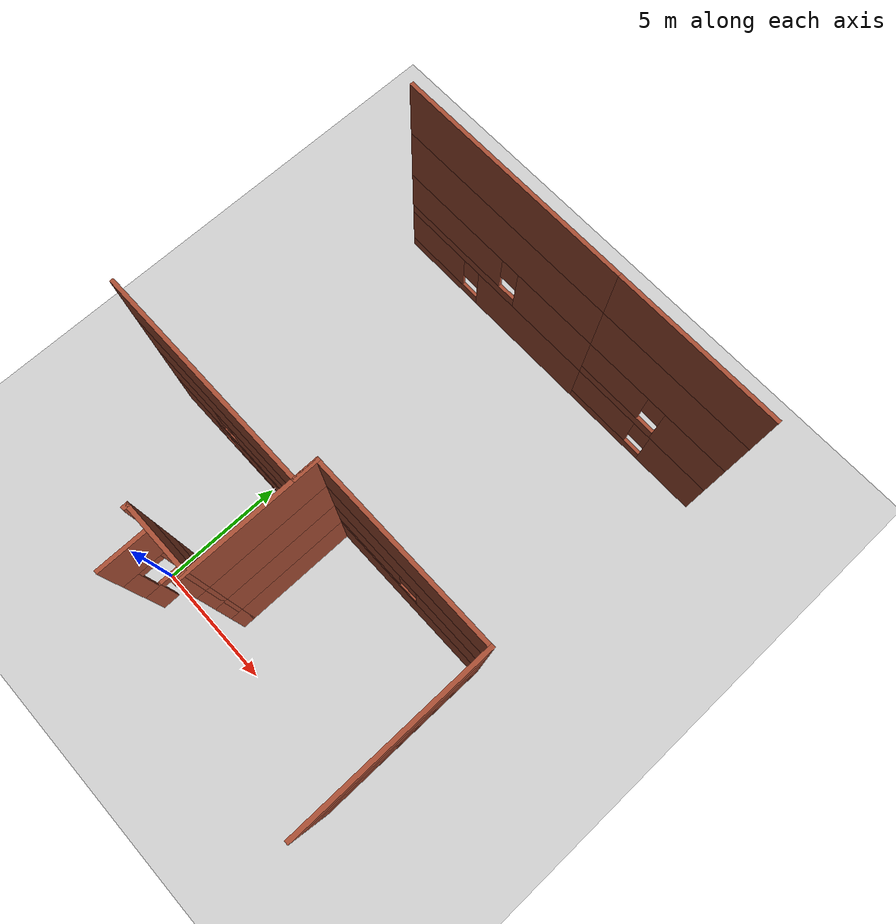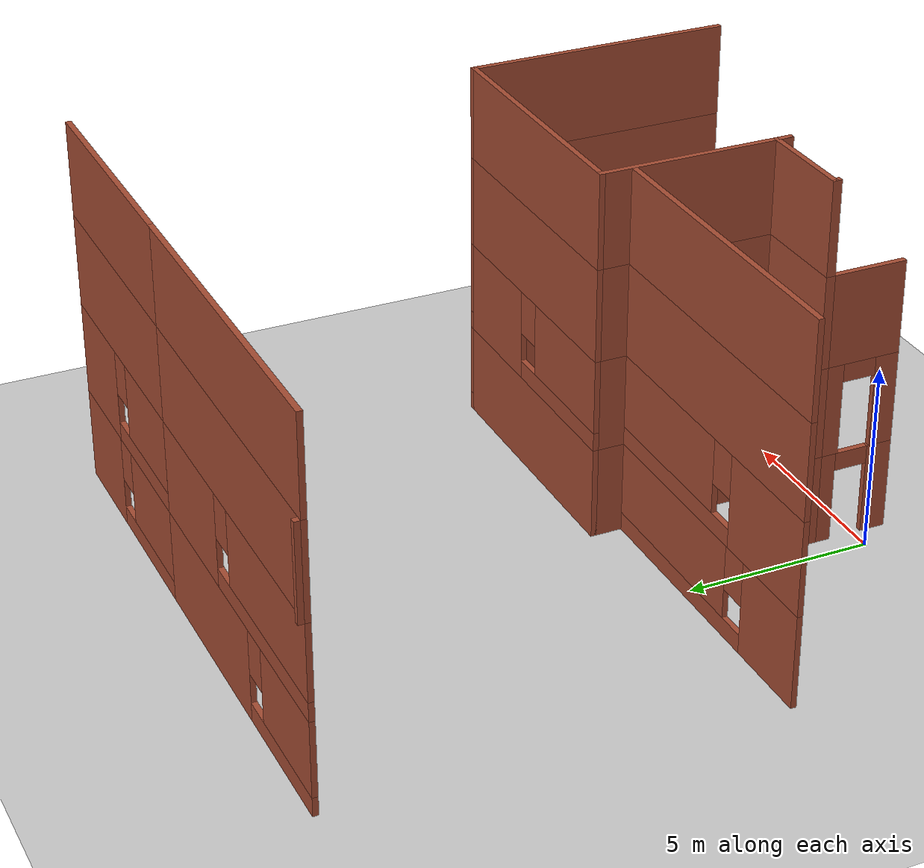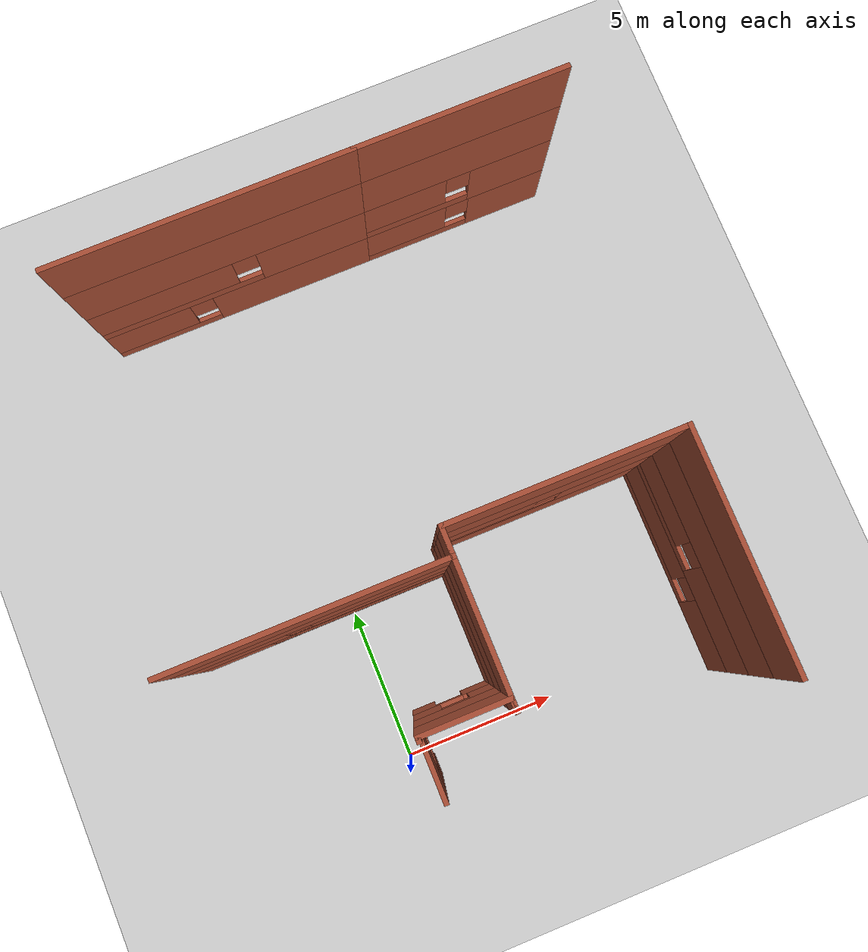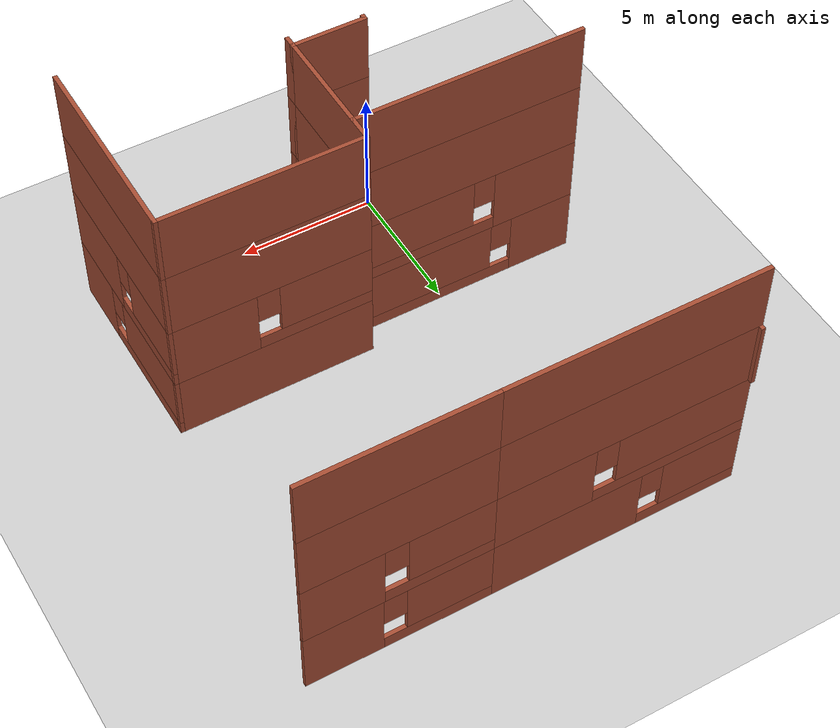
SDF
<sdf version="1.7">
 <world name="default">
  <model name="ground_plane">
   <static>1</static>
   <link name="link">
    <collision name="collision">
     <geometry><plane><normal>0 0 1</normal><size>300 300</size></plane></geometry>
     <surface>
      <contact><collide_bitmask>65535</collide_bitmask></contact>
      <friction><ode><mu>100</mu><mu2>50</mu2></ode></friction>
     </surface>
    </collision>
    <visual name="visual">
     <cast_shadows>0</cast_shadows>
     <geometry><plane><normal>0 0 1</normal><size>300 300</size></plane></geometry>
     <material>
      <script><uri>file://media/materials/scripts/gazebo.material</uri><name>Gazebo/Grey</name></script>
     </material>
    </visual>
   </link>
  </model>
  <model name="Drone_House">
   <pose>2.65602 -2.34694 0 0 -0 0</pose>
   <link name="Wall_10">
    <collision name="Wall_10_Collision">
     <geometry><box><size>1 0.15 2.5</size></box></geometry>
     <pose>0 0 1.25 0 -0 0</pose>
    </collision>
    <visual name="Wall_10_Visual">
     <pose>0 0 1.25 0 -0 0</pose>
     <geometry><box><size>1 0.15 2.5</size></box></geometry>
     <material>
      <script><uri>file://media/materials/scripts/gazebo.material</uri><name>Gazebo/Bricks</name></script>
      <ambient>1 1 1 1</ambient>
     </material>
     <meta><layer>0</layer></meta>
    </visual>
    <pose>0.626064 7.925 0 0 -0 1.5708</pose>
   </link>
   <link name="Wall_109">
    <collision name="Wall_109_Collision">
     <geometry><box><size>8.5 0.15 2.5</size></box></geometry>
     <pose>0 0 1.25 0 -0 0</pose>
    </collision>
    <visual name="Wall_109_Visual">
     <pose>0 0 1.25 0 -0 0</pose>
     <geometry><box><size>8.5 0.15 2.5</size></box></geometry>
     <material>
      <script><uri>file://media/materials/scripts/gazebo.material</uri><name>Gazebo/Bricks</name></script>
      <ambient>1 1 1 1</ambient>
     </material>
     <meta><layer>3</layer></meta>
    </visual>
    <pose>-3.54894 7.5 7.5 0 -0 0</pose>
   </link>
   <link name="Wall_11">
    <collision name="Wall_11_Collision">
     <geometry><box><size>5.25 0.15 2.5</size></box></geometry>
     <pose>0 0 1.25 0 -0 0</pose>
    </collision>
    <visual name="Wall_11_Visual">
     <pose>0 0 1.25 0 -0 0</pose>
     <geometry><box><size>5.25 0.15 2.5</size></box></geometry>
     <material>
      <script><uri>file://media/materials/scripts/gazebo.material</uri><name>Gazebo/Bricks</name></script>
      <ambient>1 1 1 1</ambient>
     </material>
     <meta><layer>0</layer></meta>
    </visual>
    <pose>0.626064 5.8 0 0 -0 -1.5708</pose>
   </link>
   <link name="Wall_110">
    <collision name="Wall_110_Collision">
     <geometry><box><size>1 0.15 2.5</size></box></geometry>
     <pose>0 0 1.25 0 -0 0</pose>
    </collision>
    <visual name="Wall_110_Visual">
     <pose>0 0 1.25 0 -0 0</pose>
     <geometry><box><size>1 0.15 2.5</size></box></geometry>
     <material>
      <script><uri>file://media/materials/scripts/gazebo.material</uri><name>Gazebo/Bricks</name></script>
      <ambient>1 1 1 1</ambient>
     </material>
     <meta><layer>3</layer></meta>
    </visual>
    <pose>0.626064 7.925 7.5 0 -0 1.5708</pose>
   </link>
   <link name="Wall_111">
    <collision name="Wall_111_Collision">
     <geometry><box><size>5.25 0.15 2.5</size></box></geometry>
     <pose>0 0 1.25 0 -0 0</pose>
    </collision>
    <visual name="Wall_111_Visual">
     <pose>0 0 1.25 0 -0 0</pose>
     <geometry><box><size>5.25 0.15 2.5</size></box></geometry>
     <material>
      <script><uri>file://media/materials/scripts/gazebo.material</uri><name>Gazebo/Bricks</name></script>
      <ambient>1 1 1 1</ambient>
     </material>
     <meta><layer>3</layer></meta>
    </visual>
    <pose>0.626064 5.8 7.5 0 -0 -1.5708</pose>
   </link>
   <link name="Wall_112">
    <collision name="Wall_112_Collision">
     <geometry><box><size>0.5 0.15 2.5</size></box></geometry>
     <pose>0 0 1.25 0 -0 0</pose>
    </collision>
    <visual name="Wall_112_Visual">
     <pose>0 0 1.25 0 -0 0</pose>
     <geometry><box><size>0.5 0.15 2.5</size></box></geometry>
     <material>
      <script><uri>file://media/materials/scripts/gazebo.material</uri><name>Gazebo/Bricks</name></script>
      <ambient>1 1 1 1</ambient>
     </material>
     <meta><layer>3</layer></meta>
    </visual>
    <pose>0.626064 3.425 7.5 0 -0 1.5708</pose>
   </link>
   <link name="Wall_113">
    <collision name="Wall_113_Collision">
     <geometry><box><size>2.75 0.15 2.5</size></box></geometry>
     <pose>0 0 1.25 0 -0 0</pose>
    </collision>
    <visual name="Wall_113_Visual">
     <pose>0 0 1.25 0 -0 0</pose>
     <geometry><box><size>2.75 0.15 2.5</size></box></geometry>
     <material>
      <script><uri>file://media/materials/scripts/gazebo.material</uri><name>Gazebo/Bricks</name></script>
      <ambient>1 1 1 1</ambient>
     </material>
     <meta><layer>3</layer></meta>
    </visual>
    <pose>-0.673936 3.6 7.5 0 -0 3.14159</pose>
   </link>
   <link name="Wall_114">
    <collision name="Wall_114_Collision">
     <geometry><box><size>0.25 0.15 2.5</size></box></geometry>
     <pose>0 0 1.25 0 -0 0</pose>
    </collision>
    <visual name="Wall_114_Visual">
     <pose>0 0 1.25 0 -0 0</pose>
     <geometry><box><size>0.25 0.15 2.5</size></box></geometry>
     <material>
      <script><uri>file://media/materials/scripts/gazebo.material</uri><name>Gazebo/Bricks</name></script>
      <ambient>1 1 1 1</ambient>
     </material>
     <meta><layer>3</layer></meta>
    </visual>
    <pose>-1.97394 3.55 7.5 0 -0 -1.5708</pose>
   </link>
   <link name="Wall_118">
    <collision name="Wall_118_Collision">
     <geometry><box><size>7.25 0.15 2.5</size></box></geometry>
     <pose>0 0 1.25 0 -0 0</pose>
    </collision>
    <visual name="Wall_118_Visual">
     <pose>0 0 1.25 0 -0 0</pose>
     <geometry><box><size>7.25 0.15 2.5</size></box></geometry>
     <material>
      <script><uri>file://media/materials/scripts/gazebo.material</uri><name>Gazebo/Bricks</name></script>
      <ambient>1 1 1 1</ambient>
     </material>
     <meta><layer>3</layer></meta>
    </visual>
    <pose>7.72606 4.8 7.5 0 -0 1.5708</pose>
   </link>
   <link name="Wall_119">
    <collision name="Wall_119_Collision">
     <geometry><box><size>7.25 0.15 2.5</size></box></geometry>
     <pose>0 0 1.25 0 -0 0</pose>
    </collision>
    <visual name="Wall_119_Visual">
     <pose>0 0 1.25 0 -0 0</pose>
     <geometry><box><size>7.25 0.15 2.5</size></box></geometry>
     <material>
      <script><uri>file://media/materials/scripts/gazebo.material</uri><name>Gazebo/Bricks</name></script>
      <ambient>1 1 1 1</ambient>
     </material>
     <meta><layer>3</layer></meta>
    </visual>
    <pose>4.17606 8.35 7.5 0 -0 3.14159</pose>
   </link>
   <link name="Wall_12">
    <collision name="Wall_12_Collision">
     <geometry><box><size>0.5 0.15 2.5</size></box></geometry>
     <pose>0 0 1.25 0 -0 0</pose>
    </collision>
    <visual name="Wall_12_Visual">
     <pose>0 0 1.25 0 -0 0</pose>
     <geometry><box><size>0.5 0.15 2.5</size></box></geometry>
     <material>
      <script><uri>file://media/materials/scripts/gazebo.material</uri><name>Gazebo/Bricks</name></script>
      <ambient>1 1 1 1</ambient>
     </material>
     <meta><layer>0</layer></meta>
    </visual>
    <pose>0.626064 3.425 0 0 -0 1.5708</pose>
   </link>
   <link name="Wall_13">
    <pose>-0.673936 3.6 0 0 -0 3.14159</pose>
    <visual name="Wall_13_Visual_0">
     <pose>-0.843864 0 1.25 0 -0 0</pose>
     <geometry><box><size>1.06227 0.15 2.5</size></box></geometry>
     <material>
      <script><uri>file://media/materials/scripts/gazebo.material</uri><name>Gazebo/Bricks</name></script>
      <ambient>1 1 1 1</ambient>
     </material>
     <meta><layer>0</layer></meta>
    </visual>
    <collision name="Wall_13_Collision_0">
     <geometry><box><size>1.06227 0.15 2.5</size></box></geometry>
     <pose>-0.843864 0 1.25 0 -0 0</pose>
    </collision>
    <visual name="Wall_13_Visual_1">
     <pose>0.981136 0 1.25 0 -0 0</pose>
     <geometry><box><size>0.787728 0.15 2.5</size></box></geometry>
     <material>
      <script><uri>file://media/materials/scripts/gazebo.material</uri><name>Gazebo/Bricks</name></script>
      <ambient>1 1 1 1</ambient>
     </material>
     <meta><layer>0</layer></meta>
    </visual>
    <collision name="Wall_13_Collision_1">
     <geometry><box><size>0.787728 0.15 2.5</size></box></geometry>
     <pose>0.981136 0 1.25 0 -0 0</pose>
    </collision>
    <visual name="Wall_13_Visual_2">
     <pose>0.137272 0 2.25 0 -0 0</pose>
     <geometry><box><size>0.9 0.15 0.5</size></box></geometry>
     <material>
      <script><uri>file://media/materials/scripts/gazebo.material</uri><name>Gazebo/Bricks</name></script>
      <ambient>1 1 1 1</ambient>
     </material>
     <meta><layer>0</layer></meta>
    </visual>
    <collision name="Wall_13_Collision_2">
     <geometry><box><size>0.9 0.15 0.5</size></box></geometry>
     <pose>0.137272 0 2.25 0 -0 0</pose>
    </collision>
   </link>
   <link name="Wall_14">
    <collision name="Wall_14_Collision">
     <geometry><box><size>0.25 0.15 2.5</size></box></geometry>
     <pose>0 0 1.25 0 -0 0</pose>
    </collision>
    <visual name="Wall_14_Visual">
     <pose>0 0 1.25 0 -0 0</pose>
     <geometry><box><size>0.25 0.15 2.5</size></box></geometry>
     <material>
      <script><uri>file://media/materials/scripts/gazebo.material</uri><name>Gazebo/Bricks</name></script>
      <ambient>1 1 1 1</ambient>
     </material>
     <meta><layer>0</layer></meta>
    </visual>
    <pose>-1.97394 3.55 0 0 -0 -1.5708</pose>
   </link>
   <link name="Wall_16">
    <pose>-1.97394 2.55 0 0 -0 -1.5708</pose>
    <visual name="Wall_16_Visual_0">
     <pose>-0.800315 0 1.25 0 -0 0</pose>
     <geometry><box><size>0.649369 0.15 2.5</size></box></geometry>
     <material>
      <script><uri>file://media/materials/scripts/gazebo.material</uri><name>Gazebo/Bricks</name></script>
      <ambient>1 1 1 1</ambient>
     </material>
     <meta><layer>0</layer></meta>
    </visual>
    <collision name="Wall_16_Collision_0">
     <geometry><box><size>0.649369 0.15 2.5</size></box></geometry>
     <pose>-0.800315 0 1.25 0 -0 0</pose>
    </collision>
    <visual name="Wall_16_Visual_1">
     <pose>0.774685 0 1.25 0 -0 0</pose>
     <geometry><box><size>0.700631 0.15 2.5</size></box></geometry>
     <material>
      <script><uri>file://media/materials/scripts/gazebo.material</uri><name>Gazebo/Bricks</name></script>
      <ambient>1 1 1 1</ambient>
     </material>
     <meta><layer>0</layer></meta>
    </visual>
    <collision name="Wall_16_Collision_1">
     <geometry><box><size>0.700631 0.15 2.5</size></box></geometry>
     <pose>0.774685 0 1.25 0 -0 0</pose>
    </collision>
    <visual name="Wall_16_Visual_2">
     <pose>-0.025631 0 2.25 0 -0 0</pose>
     <geometry><box><size>0.9 0.15 0.5</size></box></geometry>
     <material>
      <script><uri>file://media/materials/scripts/gazebo.material</uri><name>Gazebo/Bricks</name></script>
      <ambient>1 1 1 1</ambient>
     </material>
     <meta><layer>0</layer></meta>
    </visual>
    <collision name="Wall_16_Collision_2">
     <geometry><box><size>0.9 0.15 0.5</size></box></geometry>
     <pose>-0.025631 0 2.25 0 -0 0</pose>
    </collision>
   </link>
   <link name="Wall_20">
    <pose>7.72606 4.8 0 0 -0 1.5708</pose>
    <visual name="Wall_20_Visual_0">
     <pose>-2.40648 0 1.25 0 -0 0</pose>
     <geometry><box><size>2.43704 0.15 2.5</size></box></geometry>
     <material>
      <script><uri>file://media/materials/scripts/gazebo.material</uri><name>Gazebo/Bricks</name></script>
      <ambient>1 1 1 1</ambient>
     </material>
     <meta><layer>0</layer></meta>
    </visual>
    <collision name="Wall_20_Collision_0">
     <geometry><box><size>2.43704 0.15 2.5</size></box></geometry>
     <pose>-2.40648 0 1.25 0 -0 0</pose>
    </collision>
    <visual name="Wall_20_Visual_1">
     <pose>1.21852 0 0.25 0 -0 0</pose>
     <geometry><box><size>4.81296 0.15 0.5</size></box></geometry>
     <material>
      <script><uri>file://media/materials/scripts/gazebo.material</uri><name>Gazebo/Bricks</name></script>
      <ambient>1 1 1 1</ambient>
     </material>
     <meta><layer>0</layer></meta>
    </visual>
    <collision name="Wall_20_Collision_1">
     <geometry><box><size>4.81296 0.15 0.5</size></box></geometry>
     <pose>1.21852 0 0.25 0 -0 0</pose>
    </collision>
    <visual name="Wall_20_Visual_2">
     <pose>1.61852 0 1.5 0 -0 0</pose>
     <geometry><box><size>4.01296 0.15 2</size></box></geometry>
     <material>
      <script><uri>file://media/materials/scripts/gazebo.material</uri><name>Gazebo/Bricks</name></script>
      <ambient>1 1 1 1</ambient>
     </material>
     <meta><layer>0</layer></meta>
    </visual>
    <collision name="Wall_20_Collision_2">
     <geometry><box><size>4.01296 0.15 2</size></box></geometry>
     <pose>1.61852 0 1.5 0 -0 0</pose>
    </collision>
    <visual name="Wall_20_Visual_3">
     <pose>-0.787959 0 1.9 0 -0 0</pose>
     <geometry><box><size>0.8 0.15 1.2</size></box></geometry>
     <material>
      <script><uri>file://media/materials/scripts/gazebo.material</uri><name>Gazebo/Bricks</name></script>
      <ambient>1 1 1 1</ambient>
     </material>
     <meta><layer>0</layer></meta>
    </visual>
    <collision name="Wall_20_Collision_3">
     <geometry><box><size>0.8 0.15 1.2</size></box></geometry>
     <pose>-0.787959 0 1.9 0 -0 0</pose>
    </collision>
   </link>
   <link name="Wall_21">
    <collision name="Wall_21_Collision">
     <geometry><box><size>7.25 0.15 2.5</size></box></geometry>
     <pose>0 0 1.25 0 -0 0</pose>
    </collision>
    <visual name="Wall_21_Visual">
     <pose>0 0 1.25 0 -0 0</pose>
     <geometry><box><size>7.25 0.15 2.5</size></box></geometry>
     <material>
      <script><uri>file://media/materials/scripts/gazebo.material</uri><name>Gazebo/Bricks</name></script>
      <ambient>1 1 1 1</ambient>
     </material>
     <meta><layer>0</layer></meta>
    </visual>
    <pose>4.17606 8.35 0 0 -0 3.14159</pose>
   </link>
   <link name="Wall_38">
    <pose>-3.54894 7.5 2.5 0 -0 0</pose>
    <visual name="Wall_38_Visual_0">
     <pose>-2.67185 0 1.25 0 -0 0</pose>
     <geometry><box><size>3.1563 0.15 2.5</size></box></geometry>
     <material>
      <script><uri>file://media/materials/scripts/gazebo.material</uri><name>Gazebo/Bricks</name></script>
      <ambient>1 1 1 1</ambient>
     </material>
     <meta><layer>1</layer></meta>
    </visual>
    <collision name="Wall_38_Collision_0">
     <geometry><box><size>3.1563 0.15 2.5</size></box></geometry>
     <pose>-2.67185 0 1.25 0 -0 0</pose>
    </collision>
    <visual name="Wall_38_Visual_1">
     <pose>1.57815 0 0.25 0 -0 0</pose>
     <geometry><box><size>5.3437 0.15 0.5</size></box></geometry>
     <material>
      <script><uri>file://media/materials/scripts/gazebo.material</uri><name>Gazebo/Bricks</name></script>
      <ambient>1 1 1 1</ambient>
     </material>
     <meta><layer>1</layer></meta>
    </visual>
    <collision name="Wall_38_Collision_1">
     <geometry><box><size>5.3437 0.15 0.5</size></box></geometry>
     <pose>1.57815 0 0.25 0 -0 0</pose>
    </collision>
    <visual name="Wall_38_Visual_2">
     <pose>1.97815 0 1.5 0 -0 0</pose>
     <geometry><box><size>4.5437 0.15 2</size></box></geometry>
     <material>
      <script><uri>file://media/materials/scripts/gazebo.material</uri><name>Gazebo/Bricks</name></script>
      <ambient>1 1 1 1</ambient>
     </material>
     <meta><layer>1</layer></meta>
    </visual>
    <collision name="Wall_38_Collision_2">
     <geometry><box><size>4.5437 0.15 2</size></box></geometry>
     <pose>1.97815 0 1.5 0 -0 0</pose>
    </collision>
    <visual name="Wall_38_Visual_3">
     <pose>-0.693697 0 1.9 0 -0 0</pose>
     <geometry><box><size>0.8 0.15 1.2</size></box></geometry>
     <material>
      <script><uri>file://media/materials/scripts/gazebo.material</uri><name>Gazebo/Bricks</name></script>
      <ambient>1 1 1 1</ambient>
     </material>
     <meta><layer>1</layer></meta>
    </visual>
    <collision name="Wall_38_Collision_3">
     <geometry><box><size>0.8 0.15 1.2</size></box></geometry>
     <pose>-0.693697 0 1.9 0 -0 0</pose>
    </collision>
   </link>
   <link name="Wall_39">
    <collision name="Wall_39_Collision">
     <geometry><box><size>1 0.15 2.5</size></box></geometry>
     <pose>0 0 1.25 0 -0 0</pose>
    </collision>
    <visual name="Wall_39_Visual">
     <pose>0 0 1.25 0 -0 0</pose>
     <geometry><box><size>1 0.15 2.5</size></box></geometry>
     <material>
      <script><uri>file://media/materials/scripts/gazebo.material</uri><name>Gazebo/Bricks</name></script>
      <ambient>1 1 1 1</ambient>
     </material>
     <meta><layer>1</layer></meta>
    </visual>
    <pose>0.626064 7.925 2.5 0 -0 1.5708</pose>
   </link>
   <link name="Wall_40">
    <collision name="Wall_40_Collision">
     <geometry><box><size>5.25 0.15 2.5</size></box></geometry>
     <pose>0 0 1.25 0 -0 0</pose>
    </collision>
    <visual name="Wall_40_Visual">
     <pose>0 0 1.25 0 -0 0</pose>
     <geometry><box><size>5.25 0.15 2.5</size></box></geometry>
     <material>
      <script><uri>file://media/materials/scripts/gazebo.material</uri><name>Gazebo/Bricks</name></script>
      <ambient>1 1 1 1</ambient>
     </material>
     <meta><layer>1</layer></meta>
    </visual>
    <pose>0.626064 5.8 2.5 0 -0 -1.5708</pose>
   </link>
   <link name="Wall_41">
    <collision name="Wall_41_Collision">
     <geometry><box><size>0.5 0.15 2.5</size></box></geometry>
     <pose>0 0 1.25 0 -0 0</pose>
    </collision>
    <visual name="Wall_41_Visual">
     <pose>0 0 1.25 0 -0 0</pose>
     <geometry><box><size>0.5 0.15 2.5</size></box></geometry>
     <material>
      <script><uri>file://media/materials/scripts/gazebo.material</uri><name>Gazebo/Bricks</name></script>
      <ambient>1 1 1 1</ambient>
     </material>
     <meta><layer>1</layer></meta>
    </visual>
    <pose>0.626064 3.425 2.5 0 -0 1.5708</pose>
   </link>
   <link name="Wall_42">
    <pose>-0.673936 3.6 2.5 0 -0 3.14159</pose>
    <visual name="Wall_42_Visual_0">
     <pose>-0.910365 0 1.25 0 -0 0</pose>
     <geometry><box><size>0.929271 0.15 2.5</size></box></geometry>
     <material>
      <script><uri>file://media/materials/scripts/gazebo.material</uri><name>Gazebo/Bricks</name></script>
      <ambient>1 1 1 1</ambient>
     </material>
     <meta><layer>1</layer></meta>
    </visual>
    <collision name="Wall_42_Collision_0">
     <geometry><box><size>0.929271 0.15 2.5</size></box></geometry>
     <pose>-0.910365 0 1.25 0 -0 0</pose>
    </collision>
    <visual name="Wall_42_Visual_1">
     <pose>0.914635 0 1.25 0 -0 0</pose>
     <geometry><box><size>0.920729 0.15 2.5</size></box></geometry>
     <material>
      <script><uri>file://media/materials/scripts/gazebo.material</uri><name>Gazebo/Bricks</name></script>
      <ambient>1 1 1 1</ambient>
     </material>
     <meta><layer>1</layer></meta>
    </visual>
    <collision name="Wall_42_Collision_1">
     <geometry><box><size>0.920729 0.15 2.5</size></box></geometry>
     <pose>0.914635 0 1.25 0 -0 0</pose>
    </collision>
    <visual name="Wall_42_Visual_2">
     <pose>0.004271 0 2.25 0 -0 0</pose>
     <geometry><box><size>0.9 0.15 0.5</size></box></geometry>
     <material>
      <script><uri>file://media/materials/scripts/gazebo.material</uri><name>Gazebo/Bricks</name></script>
      <ambient>1 1 1 1</ambient>
     </material>
     <meta><layer>1</layer></meta>
    </visual>
    <collision name="Wall_42_Collision_2">
     <geometry><box><size>0.9 0.15 0.5</size></box></geometry>
     <pose>0.004271 0 2.25 0 -0 0</pose>
    </collision>
   </link>
   <link name="Wall_43">
    <collision name="Wall_43_Collision">
     <geometry><box><size>0.25 0.15 2.5</size></box></geometry>
     <pose>0 0 1.25 0 -0 0</pose>
    </collision>
    <visual name="Wall_43_Visual">
     <pose>0 0 1.25 0 -0 0</pose>
     <geometry><box><size>0.25 0.15 2.5</size></box></geometry>
     <material>
      <script><uri>file://media/materials/scripts/gazebo.material</uri><name>Gazebo/Bricks</name></script>
      <ambient>1 1 1 1</ambient>
     </material>
     <meta><layer>1</layer></meta>
    </visual>
    <pose>-1.97394 3.55 2.5 0 -0 -1.5708</pose>
   </link>
   <link name="Wall_44">
    <pose>-1.97394 2.55 2.5 0 -0 -1.5708</pose>
    <visual name="Wall_44_Visual_0">
     <pose>-0.773715 0 1.25 0 -0 0</pose>
     <geometry><box><size>0.70257 0.15 2.5</size></box></geometry>
     <material>
      <script><uri>file://media/materials/scripts/gazebo.material</uri><name>Gazebo/Bricks</name></script>
      <ambient>1 1 1 1</ambient>
     </material>
     <meta><layer>1</layer></meta>
    </visual>
    <collision name="Wall_44_Collision_0">
     <geometry><box><size>0.70257 0.15 2.5</size></box></geometry>
     <pose>-0.773715 0 1.25 0 -0 0</pose>
    </collision>
    <visual name="Wall_44_Visual_1">
     <pose>0.801285 0 1.25 0 -0 0</pose>
     <geometry><box><size>0.64743 0.15 2.5</size></box></geometry>
     <material>
      <script><uri>file://media/materials/scripts/gazebo.material</uri><name>Gazebo/Bricks</name></script>
      <ambient>1 1 1 1</ambient>
     </material>
     <meta><layer>1</layer></meta>
    </visual>
    <collision name="Wall_44_Collision_1">
     <geometry><box><size>0.64743 0.15 2.5</size></box></geometry>
     <pose>0.801285 0 1.25 0 -0 0</pose>
    </collision>
    <visual name="Wall_44_Visual_2">
     <pose>0.02757 0 2.25 0 -0 0</pose>
     <geometry><box><size>0.9 0.15 0.5</size></box></geometry>
     <material>
      <script><uri>file://media/materials/scripts/gazebo.material</uri><name>Gazebo/Bricks</name></script>
      <ambient>1 1 1 1</ambient>
     </material>
     <meta><layer>1</layer></meta>
    </visual>
    <collision name="Wall_44_Collision_2">
     <geometry><box><size>0.9 0.15 0.5</size></box></geometry>
     <pose>0.02757 0 2.25 0 -0 0</pose>
    </collision>
   </link>
   <link name="Wall_47">
    <pose>7.72606 4.8 2.5 0 -0 1.5708</pose>
    <visual name="Wall_47_Visual_0">
     <pose>-1.90108 0 1.25 0 -0 0</pose>
     <geometry><box><size>3.44785 0.15 2.5</size></box></geometry>
     <material>
      <script><uri>file://media/materials/scripts/gazebo.material</uri><name>Gazebo/Bricks</name></script>
      <ambient>1 1 1 1</ambient>
     </material>
     <meta><layer>1</layer></meta>
    </visual>
    <collision name="Wall_47_Collision_0">
     <geometry><box><size>3.44785 0.15 2.5</size></box></geometry>
     <pose>-1.90108 0 1.25 0 -0 0</pose>
    </collision>
    <visual name="Wall_47_Visual_1">
     <pose>1.72392 0 0.25 0 -0 0</pose>
     <geometry><box><size>3.80215 0.15 0.5</size></box></geometry>
     <material>
      <script><uri>file://media/materials/scripts/gazebo.material</uri><name>Gazebo/Bricks</name></script>
      <ambient>1 1 1 1</ambient>
     </material>
     <meta><layer>1</layer></meta>
    </visual>
    <collision name="Wall_47_Collision_1">
     <geometry><box><size>3.80215 0.15 0.5</size></box></geometry>
     <pose>1.72392 0 0.25 0 -0 0</pose>
    </collision>
    <visual name="Wall_47_Visual_2">
     <pose>2.12392 0 1.5 0 -0 0</pose>
     <geometry><box><size>3.00215 0.15 2</size></box></geometry>
     <material>
      <script><uri>file://media/materials/scripts/gazebo.material</uri><name>Gazebo/Bricks</name></script>
      <ambient>1 1 1 1</ambient>
     </material>
     <meta><layer>1</layer></meta>
    </visual>
    <collision name="Wall_47_Collision_2">
     <geometry><box><size>3.00215 0.15 2</size></box></geometry>
     <pose>2.12392 0 1.5 0 -0 0</pose>
    </collision>
    <visual name="Wall_47_Visual_3">
     <pose>0.222849 0 1.9 0 -0 0</pose>
     <geometry><box><size>0.8 0.15 1.2</size></box></geometry>
     <material>
      <script><uri>file://media/materials/scripts/gazebo.material</uri><name>Gazebo/Bricks</name></script>
      <ambient>1 1 1 1</ambient>
     </material>
     <meta><layer>1</layer></meta>
    </visual>
    <collision name="Wall_47_Collision_3">
     <geometry><box><size>0.8 0.15 1.2</size></box></geometry>
     <pose>0.222849 0 1.9 0 -0 0</pose>
    </collision>
   </link>
   <link name="Wall_48">
    <pose>4.17606 8.35 2.5 0 -0 3.14159</pose>
    <visual name="Wall_48_Visual_0">
     <pose>-2.07248 0 1.25 0 -0 0</pose>
     <geometry><box><size>3.10503 0.15 2.5</size></box></geometry>
     <material>
      <script><uri>file://media/materials/scripts/gazebo.material</uri><name>Gazebo/Bricks</name></script>
      <ambient>1 1 1 1</ambient>
     </material>
     <meta><layer>1</layer></meta>
    </visual>
    <collision name="Wall_48_Collision_0">
     <geometry><box><size>3.10503 0.15 2.5</size></box></geometry>
     <pose>-2.07248 0 1.25 0 -0 0</pose>
    </collision>
    <visual name="Wall_48_Visual_1">
     <pose>1.55252 0 0.25 0 -0 0</pose>
     <geometry><box><size>4.14497 0.15 0.5</size></box></geometry>
     <material>
      <script><uri>file://media/materials/scripts/gazebo.material</uri><name>Gazebo/Bricks</name></script>
      <ambient>1 1 1 1</ambient>
     </material>
     <meta><layer>1</layer></meta>
    </visual>
    <collision name="Wall_48_Collision_1">
     <geometry><box><size>4.14497 0.15 0.5</size></box></geometry>
     <pose>1.55252 0 0.25 0 -0 0</pose>
    </collision>
    <visual name="Wall_48_Visual_2">
     <pose>1.95252 0 1.5 0 -0 0</pose>
     <geometry><box><size>3.34497 0.15 2</size></box></geometry>
     <material>
      <script><uri>file://media/materials/scripts/gazebo.material</uri><name>Gazebo/Bricks</name></script>
      <ambient>1 1 1 1</ambient>
     </material>
     <meta><layer>1</layer></meta>
    </visual>
    <collision name="Wall_48_Collision_2">
     <geometry><box><size>3.34497 0.15 2</size></box></geometry>
     <pose>1.95252 0 1.5 0 -0 0</pose>
    </collision>
    <visual name="Wall_48_Visual_3">
     <pose>-0.119967 0 1.9 0 -0 0</pose>
     <geometry><box><size>0.8 0.15 1.2</size></box></geometry>
     <material>
      <script><uri>file://media/materials/scripts/gazebo.material</uri><name>Gazebo/Bricks</name></script>
      <ambient>1 1 1 1</ambient>
     </material>
     <meta><layer>1</layer></meta>
    </visual>
    <collision name="Wall_48_Collision_3">
     <geometry><box><size>0.8 0.15 1.2</size></box></geometry>
     <pose>-0.119967 0 1.9 0 -0 0</pose>
    </collision>
   </link>
   <link name="Wall_87">
    <collision name="Wall_87_Collision">
     <geometry><box><size>8.5 0.15 2.5</size></box></geometry>
     <pose>0 0 1.25 0 -0 0</pose>
    </collision>
    <visual name="Wall_87_Visual">
     <pose>0 0 1.25 0 -0 0</pose>
     <geometry><box><size>8.5 0.15 2.5</size></box></geometry>
     <material>
      <script><uri>file://media/materials/scripts/gazebo.material</uri><name>Gazebo/Bricks</name></script>
      <ambient>1 1 1 1</ambient>
     </material>
     <meta><layer>2</layer></meta>
    </visual>
    <pose>-3.54894 7.5 5 0 -0 0</pose>
   </link>
   <link name="Wall_88">
    <collision name="Wall_88_Collision">
     <geometry><box><size>1 0.15 2.5</size></box></geometry>
     <pose>0 0 1.25 0 -0 0</pose>
    </collision>
    <visual name="Wall_88_Visual">
     <pose>0 0 1.25 0 -0 0</pose>
     <geometry><box><size>1 0.15 2.5</size></box></geometry>
     <material>
      <script><uri>file://media/materials/scripts/gazebo.material</uri><name>Gazebo/Bricks</name></script>
      <ambient>1 1 1 1</ambient>
     </material>
     <meta><layer>2</layer></meta>
    </visual>
    <pose>0.626064 7.925 5 0 -0 1.5708</pose>
   </link>
   <link name="Wall_89">
    <collision name="Wall_89_Collision">
     <geometry><box><size>5.25 0.15 2.5</size></box></geometry>
     <pose>0 0 1.25 0 -0 0</pose>
    </collision>
    <visual name="Wall_89_Visual">
     <pose>0 0 1.25 0 -0 0</pose>
     <geometry><box><size>5.25 0.15 2.5</size></box></geometry>
     <material>
      <script><uri>file://media/materials/scripts/gazebo.material</uri><name>Gazebo/Bricks</name></script>
      <ambient>1 1 1 1</ambient>
     </material>
     <meta><layer>2</layer></meta>
    </visual>
    <pose>0.626064 5.8 5 0 -0 -1.5708</pose>
   </link>
   <link name="Wall_9">
    <pose>-3.54894 7.5 0 0 -0 0</pose>
    <visual name="Wall_9_Visual_0">
     <pose>-3.04425 0 1.25 0 -0 0</pose>
     <geometry><box><size>2.4115 0.15 2.5</size></box></geometry>
     <material>
      <script><uri>file://media/materials/scripts/gazebo.material</uri><name>Gazebo/Bricks</name></script>
      <ambient>1 1 1 1</ambient>
     </material>
     <meta><layer>0</layer></meta>
    </visual>
    <collision name="Wall_9_Collision_0">
     <geometry><box><size>2.4115 0.15 2.5</size></box></geometry>
     <pose>-3.04425 0 1.25 0 -0 0</pose>
    </collision>
    <visual name="Wall_9_Visual_1">
     <pose>1.20575 0 0.25 0 -0 0</pose>
     <geometry><box><size>6.0885 0.15 0.5</size></box></geometry>
     <material>
      <script><uri>file://media/materials/scripts/gazebo.material</uri><name>Gazebo/Bricks</name></script>
      <ambient>1 1 1 1</ambient>
     </material>
     <meta><layer>0</layer></meta>
    </visual>
    <collision name="Wall_9_Collision_1">
     <geometry><box><size>6.0885 0.15 0.5</size></box></geometry>
     <pose>1.20575 0 0.25 0 -0 0</pose>
    </collision>
    <visual name="Wall_9_Visual_2">
     <pose>1.60575 0 1.5 0 -0 0</pose>
     <geometry><box><size>5.2885 0.15 2</size></box></geometry>
     <material>
      <script><uri>file://media/materials/scripts/gazebo.material</uri><name>Gazebo/Bricks</name></script>
      <ambient>1 1 1 1</ambient>
     </material>
     <meta><layer>0</layer></meta>
    </visual>
    <collision name="Wall_9_Collision_2">
     <geometry><box><size>5.2885 0.15 2</size></box></geometry>
     <pose>1.60575 0 1.5 0 -0 0</pose>
    </collision>
    <visual name="Wall_9_Visual_3">
     <pose>-1.4385 0 1.9 0 -0 0</pose>
     <geometry><box><size>0.8 0.15 1.2</size></box></geometry>
     <material>
      <script><uri>file://media/materials/scripts/gazebo.material</uri><name>Gazebo/Bricks</name></script>
      <ambient>1 1 1 1</ambient>
     </material>
     <meta><layer>0</layer></meta>
    </visual>
    <collision name="Wall_9_Collision_3">
     <geometry><box><size>0.8 0.15 1.2</size></box></geometry>
     <pose>-1.4385 0 1.9 0 -0 0</pose>
    </collision>
   </link>
   <link name="Wall_90">
    <collision name="Wall_90_Collision">
     <geometry><box><size>0.5 0.15 2.5</size></box></geometry>
     <pose>0 0 1.25 0 -0 0</pose>
    </collision>
    <visual name="Wall_90_Visual">
     <pose>0 0 1.25 0 -0 0</pose>
     <geometry><box><size>0.5 0.15 2.5</size></box></geometry>
     <material>
      <script><uri>file://media/materials/scripts/gazebo.material</uri><name>Gazebo/Bricks</name></script>
      <ambient>1 1 1 1</ambient>
     </material>
     <meta><layer>2</layer></meta>
    </visual>
    <pose>0.626064 3.425 5 0 -0 1.5708</pose>
   </link>
   <link name="Wall_91">
    <collision name="Wall_91_Collision">
     <geometry><box><size>2.75 0.15 2.5</size></box></geometry>
     <pose>0 0 1.25 0 -0 0</pose>
    </collision>
    <visual name="Wall_91_Visual">
     <pose>0 0 1.25 0 -0 0</pose>
     <geometry><box><size>2.75 0.15 2.5</size></box></geometry>
     <material>
      <script><uri>file://media/materials/scripts/gazebo.material</uri><name>Gazebo/Bricks</name></script>
      <ambient>1 1 1 1</ambient>
     </material>
     <meta><layer>2</layer></meta>
    </visual>
    <pose>-0.673936 3.6 5 0 -0 3.14159</pose>
   </link>
   <link name="Wall_92">
    <collision name="Wall_92_Collision">
     <geometry><box><size>0.25 0.15 2.5</size></box></geometry>
     <pose>0 0 1.25 0 -0 0</pose>
    </collision>
    <visual name="Wall_92_Visual">
     <pose>0 0 1.25 0 -0 0</pose>
     <geometry><box><size>0.25 0.15 2.5</size></box></geometry>
     <material>
      <script><uri>file://media/materials/scripts/gazebo.material</uri><name>Gazebo/Bricks</name></script>
      <ambient>1 1 1 1</ambient>
     </material>
     <meta><layer>2</layer></meta>
    </visual>
    <pose>-1.97394 3.55 5 0 -0 -1.5708</pose>
   </link>
   <link name="Wall_93">
    <collision name="Wall_93_Collision">
     <geometry><box><size>2.25 0.15 2.5</size></box></geometry>
     <pose>0 0 1.25 0 -0 0</pose>
    </collision>
    <visual name="Wall_93_Visual">
     <pose>0 0 1.25 0 -0 0</pose>
     <geometry><box><size>2.25 0.15 2.5</size></box></geometry>
     <material>
      <script><uri>file://media/materials/scripts/gazebo.material</uri><name>Gazebo/Bricks</name></script>
      <ambient>1 1 1 1</ambient>
     </material>
     <meta><layer>2</layer></meta>
    </visual>
    <pose>-1.97394 2.55 5 0 -0 -1.5708</pose>
   </link>
   <link name="Wall_96">
    <collision name="Wall_96_Collision">
     <geometry><box><size>7.25 0.15 2.5</size></box></geometry>
     <pose>0 0 1.25 0 -0 0</pose>
    </collision>
    <visual name="Wall_96_Visual">
     <pose>0 0 1.25 0 -0 0</pose>
     <geometry><box><size>7.25 0.15 2.5</size></box></geometry>
     <material>
      <script><uri>file://media/materials/scripts/gazebo.material</uri><name>Gazebo/Bricks</name></script>
      <ambient>1 1 1 1</ambient>
     </material>
     <meta><layer>2</layer></meta>
    </visual>
    <pose>7.72606 4.8 5 0 -0 1.5708</pose>
   </link>
   <link name="Wall_97">
    <collision name="Wall_97_Collision">
     <geometry><box><size>7.25 0.15 2.5</size></box></geometry>
     <pose>0 0 1.25 0 -0 0</pose>
    </collision>
    <visual name="Wall_97_Visual">
     <pose>0 0 1.25 0 -0 0</pose>
     <geometry><box><size>7.25 0.15 2.5</size></box></geometry>
     <material>
      <script><uri>file://media/materials/scripts/gazebo.material</uri><name>Gazebo/Bricks</name></script>
      <ambient>1 1 1 1</ambient>
     </material>
     <meta><layer>2</layer></meta>
    </visual>
    <pose>4.17606 8.35 5 0 -0 3.14159</pose>
   </link>
   <static>1</static>
  </model>
  <model name="Drone_House_1">
   <pose>3.61083 24.7733 0 0 -0 0</pose>
   <link name="Wall_103">
    <collision name="Wall_103_Collision">
     <geometry><box><size>0.15 0.15 2.5</size></box></geometry>
     <pose>0 0 1.25 0 -0 0</pose>
    </collision>
    <visual name="Wall_103_Visual">
     <pose>0 0 1.25 0 -0 0</pose>
     <geometry><box><size>0.15 0.15 2.5</size></box></geometry>
     <material>
      <script><uri>file://media/materials/scripts/gazebo.material</uri><name>Gazebo/Bricks</name></script>
      <ambient>1 1 1 1</ambient>
     </material>
     <meta><layer>2</layer></meta>
    </visual>
    <pose>-7.72394 -8.2 5 0 -0 0</pose>
   </link>
   <link name="Wall_104">
    <collision name="Wall_104_Collision">
     <geometry><box><size>9.25 0.15 2.5</size></box></geometry>
     <pose>0 0 1.25 0 -0 0</pose>
    </collision>
    <visual name="Wall_104_Visual">
     <pose>0 0 1.25 0 -0 0</pose>
     <geometry><box><size>9.25 0.15 2.5</size></box></geometry>
     <material>
      <script><uri>file://media/materials/scripts/gazebo.material</uri><name>Gazebo/Bricks</name></script>
      <ambient>1 1 1 1</ambient>
     </material>
     <meta><layer>2</layer></meta>
    </visual>
    <pose>-3.17394 -8.35 5 0 -0 3.14159</pose>
   </link>
   <link name="Wall_121">
    <collision name="Wall_121_Collision">
     <geometry><box><size>6.5 0.15 2.5</size></box></geometry>
     <pose>0 0 1.25 0 -0 0</pose>
    </collision>
    <visual name="Wall_121_Visual">
     <pose>0 0 1.25 0 -0 0</pose>
     <geometry><box><size>6.5 0.15 2.5</size></box></geometry>
     <material>
      <script><uri>file://media/materials/scripts/gazebo.material</uri><name>Gazebo/Bricks</name></script>
      <ambient>1 1 1 1</ambient>
     </material>
     <meta><layer>3</layer></meta>
    </visual>
    <pose>4.55106 -8.35 7.5 0 -0 3.14159</pose>
   </link>
   <link name="Wall_126">
    <collision name="Wall_126_Collision">
     <geometry><box><size>9.25 0.15 2.5</size></box></geometry>
     <pose>0 0 1.25 0 -0 0</pose>
    </collision>
    <visual name="Wall_126_Visual">
     <pose>0 0 1.25 0 -0 0</pose>
     <geometry><box><size>9.25 0.15 2.5</size></box></geometry>
     <material>
      <script><uri>file://media/materials/scripts/gazebo.material</uri><name>Gazebo/Bricks</name></script>
      <ambient>1 1 1 1</ambient>
     </material>
     <meta><layer>3</layer></meta>
    </visual>
    <pose>-3.17394 -8.35 7.5 0 -0 3.14159</pose>
   </link>
   <link name="Wall_24">
    <pose>4.55106 -8.35 0 0 -0 3.14159</pose>
    <visual name="Wall_24_Visual_0">
     <pose>-1.89698 0 1.25 0 -0 0</pose>
     <geometry><box><size>2.70603 0.15 2.5</size></box></geometry>
     <material>
      <script><uri>file://media/materials/scripts/gazebo.material</uri><name>Gazebo/Bricks</name></script>
      <ambient>1 1 1 1</ambient>
     </material>
     <meta><layer>0</layer></meta>
    </visual>
    <collision name="Wall_24_Collision_0">
     <geometry><box><size>2.70603 0.15 2.5</size></box></geometry>
     <pose>-1.89698 0 1.25 0 -0 0</pose>
    </collision>
    <visual name="Wall_24_Visual_1">
     <pose>1.35302 0 0.25 0 -0 0</pose>
     <geometry><box><size>3.79397 0.15 0.5</size></box></geometry>
     <material>
      <script><uri>file://media/materials/scripts/gazebo.material</uri><name>Gazebo/Bricks</name></script>
      <ambient>1 1 1 1</ambient>
     </material>
     <meta><layer>0</layer></meta>
    </visual>
    <collision name="Wall_24_Collision_1">
     <geometry><box><size>3.79397 0.15 0.5</size></box></geometry>
     <pose>1.35302 0 0.25 0 -0 0</pose>
    </collision>
    <visual name="Wall_24_Visual_2">
     <pose>1.75301 0 1.5 0 -0 0</pose>
     <geometry><box><size>2.99397 0.15 2</size></box></geometry>
     <material>
      <script><uri>file://media/materials/scripts/gazebo.material</uri><name>Gazebo/Bricks</name></script>
      <ambient>1 1 1 1</ambient>
     </material>
     <meta><layer>0</layer></meta>
    </visual>
    <collision name="Wall_24_Collision_2">
     <geometry><box><size>2.99397 0.15 2</size></box></geometry>
     <pose>1.75301 0 1.5 0 -0 0</pose>
    </collision>
    <visual name="Wall_24_Visual_3">
     <pose>-0.14397 0 1.9 0 -0 0</pose>
     <geometry><box><size>0.8 0.15 1.2</size></box></geometry>
     <material>
      <script><uri>file://media/materials/scripts/gazebo.material</uri><name>Gazebo/Bricks</name></script>
      <ambient>1 1 1 1</ambient>
     </material>
     <meta><layer>0</layer></meta>
    </visual>
    <collision name="Wall_24_Collision_3">
     <geometry><box><size>0.8 0.15 1.2</size></box></geometry>
     <pose>-0.14397 0 1.9 0 -0 0</pose>
    </collision>
   </link>
   <link name="Wall_31">
    <pose>-3.17394 -8.35 0 0 -0 3.14159</pose>
    <visual name="Wall_31_Visual_0">
     <pose>-1.87175 0 1.25 0 -0 0</pose>
     <geometry><box><size>5.5065 0.15 2.5</size></box></geometry>
     <material>
      <script><uri>file://media/materials/scripts/gazebo.material</uri><name>Gazebo/Bricks</name></script>
      <ambient>1 1 1 1</ambient>
     </material>
     <meta><layer>0</layer></meta>
    </visual>
    <collision name="Wall_31_Collision_0">
     <geometry><box><size>5.5065 0.15 2.5</size></box></geometry>
     <pose>-1.87175 0 1.25 0 -0 0</pose>
    </collision>
    <visual name="Wall_31_Visual_1">
     <pose>2.75325 0 0.25 0 -0 0</pose>
     <geometry><box><size>3.7435 0.15 0.5</size></box></geometry>
     <material>
      <script><uri>file://media/materials/scripts/gazebo.material</uri><name>Gazebo/Bricks</name></script>
      <ambient>1 1 1 1</ambient>
     </material>
     <meta><layer>0</layer></meta>
    </visual>
    <collision name="Wall_31_Collision_1">
     <geometry><box><size>3.7435 0.15 0.5</size></box></geometry>
     <pose>2.75325 0 0.25 0 -0 0</pose>
    </collision>
    <visual name="Wall_31_Visual_2">
     <pose>3.15325 0 1.5 0 -0 0</pose>
     <geometry><box><size>2.9435 0.15 2</size></box></geometry>
     <material>
      <script><uri>file://media/materials/scripts/gazebo.material</uri><name>Gazebo/Bricks</name></script>
      <ambient>1 1 1 1</ambient>
     </material>
     <meta><layer>0</layer></meta>
    </visual>
    <collision name="Wall_31_Collision_2">
     <geometry><box><size>2.9435 0.15 2</size></box></geometry>
     <pose>3.15325 0 1.5 0 -0 0</pose>
    </collision>
    <visual name="Wall_31_Visual_3">
     <pose>1.2815 0 1.9 0 -0 0</pose>
     <geometry><box><size>0.8 0.15 1.2</size></box></geometry>
     <material>
      <script><uri>file://media/materials/scripts/gazebo.material</uri><name>Gazebo/Bricks</name></script>
      <ambient>1 1 1 1</ambient>
     </material>
     <meta><layer>0</layer></meta>
    </visual>
    <collision name="Wall_31_Collision_3">
     <geometry><box><size>0.8 0.15 1.2</size></box></geometry>
     <pose>1.2815 0 1.9 0 -0 0</pose>
    </collision>
   </link>
   <link name="Wall_50">
    <pose>4.55106 -8.35 2.5 0 -0 3.14159</pose>
    <visual name="Wall_50_Visual_0">
     <pose>-1.87038 0 1.25 0 -0 0</pose>
     <geometry><box><size>2.75923 0.15 2.5</size></box></geometry>
     <material>
      <script><uri>file://media/materials/scripts/gazebo.material</uri><name>Gazebo/Bricks</name></script>
      <ambient>1 1 1 1</ambient>
     </material>
     <meta><layer>1</layer></meta>
    </visual>
    <collision name="Wall_50_Collision_0">
     <geometry><box><size>2.75923 0.15 2.5</size></box></geometry>
     <pose>-1.87038 0 1.25 0 -0 0</pose>
    </collision>
    <visual name="Wall_50_Visual_1">
     <pose>1.37962 0 0.25 0 -0 0</pose>
     <geometry><box><size>3.74077 0.15 0.5</size></box></geometry>
     <material>
      <script><uri>file://media/materials/scripts/gazebo.material</uri><name>Gazebo/Bricks</name></script>
      <ambient>1 1 1 1</ambient>
     </material>
     <meta><layer>1</layer></meta>
    </visual>
    <collision name="Wall_50_Collision_1">
     <geometry><box><size>3.74077 0.15 0.5</size></box></geometry>
     <pose>1.37962 0 0.25 0 -0 0</pose>
    </collision>
    <visual name="Wall_50_Visual_2">
     <pose>1.77961 0 1.5 0 -0 0</pose>
     <geometry><box><size>2.94077 0.15 2</size></box></geometry>
     <material>
      <script><uri>file://media/materials/scripts/gazebo.material</uri><name>Gazebo/Bricks</name></script>
      <ambient>1 1 1 1</ambient>
     </material>
     <meta><layer>1</layer></meta>
    </visual>
    <collision name="Wall_50_Collision_2">
     <geometry><box><size>2.94077 0.15 2</size></box></geometry>
     <pose>1.77961 0 1.5 0 -0 0</pose>
    </collision>
    <visual name="Wall_50_Visual_3">
     <pose>-0.090769 0 1.9 0 -0 0</pose>
     <geometry><box><size>0.8 0.15 1.2</size></box></geometry>
     <material>
      <script><uri>file://media/materials/scripts/gazebo.material</uri><name>Gazebo/Bricks</name></script>
      <ambient>1 1 1 1</ambient>
     </material>
     <meta><layer>1</layer></meta>
    </visual>
    <collision name="Wall_50_Collision_3">
     <geometry><box><size>0.8 0.15 1.2</size></box></geometry>
     <pose>-0.090769 0 1.9 0 -0 0</pose>
    </collision>
   </link>
   <link name="Wall_55">
    <pose>-3.17394 -8.35 2.5 0 -0 3.14159</pose>
    <visual name="Wall_55_Visual_0">
     <pose>-2.80276 0 1.25 0 -0 0</pose>
     <geometry><box><size>3.64448 0.15 2.5</size></box></geometry>
     <material>
      <script><uri>file://media/materials/scripts/gazebo.material</uri><name>Gazebo/Bricks</name></script>
      <ambient>1 1 1 1</ambient>
     </material>
     <meta><layer>1</layer></meta>
    </visual>
    <collision name="Wall_55_Collision_0">
     <geometry><box><size>3.64448 0.15 2.5</size></box></geometry>
     <pose>-2.80276 0 1.25 0 -0 0</pose>
    </collision>
    <visual name="Wall_55_Visual_1">
     <pose>1.82224 0 0.25 0 -0 0</pose>
     <geometry><box><size>5.60551 0.15 0.5</size></box></geometry>
     <material>
      <script><uri>file://media/materials/scripts/gazebo.material</uri><name>Gazebo/Bricks</name></script>
      <ambient>1 1 1 1</ambient>
     </material>
     <meta><layer>1</layer></meta>
    </visual>
    <collision name="Wall_55_Collision_1">
     <geometry><box><size>5.60551 0.15 0.5</size></box></geometry>
     <pose>1.82224 0 0.25 0 -0 0</pose>
    </collision>
    <visual name="Wall_55_Visual_2">
     <pose>2.22224 0 1.5 0 -0 0</pose>
     <geometry><box><size>4.80551 0.15 2</size></box></geometry>
     <material>
      <script><uri>file://media/materials/scripts/gazebo.material</uri><name>Gazebo/Bricks</name></script>
      <ambient>1 1 1 1</ambient>
     </material>
     <meta><layer>1</layer></meta>
    </visual>
    <collision name="Wall_55_Collision_2">
     <geometry><box><size>4.80551 0.15 2</size></box></geometry>
     <pose>2.22224 0 1.5 0 -0 0</pose>
    </collision>
    <visual name="Wall_55_Visual_3">
     <pose>-0.580515 0 1.9 0 -0 0</pose>
     <geometry><box><size>0.8 0.15 1.2</size></box></geometry>
     <material>
      <script><uri>file://media/materials/scripts/gazebo.material</uri><name>Gazebo/Bricks</name></script>
      <ambient>1 1 1 1</ambient>
     </material>
     <meta><layer>1</layer></meta>
    </visual>
    <collision name="Wall_55_Collision_3">
     <geometry><box><size>0.8 0.15 1.2</size></box></geometry>
     <pose>-0.580515 0 1.9 0 -0 0</pose>
    </collision>
   </link>
   <link name="Wall_99">
    <collision name="Wall_99_Collision">
     <geometry><box><size>6.5 0.15 2.5</size></box></geometry>
     <pose>0 0 1.25 0 -0 0</pose>
    </collision>
    <visual name="Wall_99_Visual">
     <pose>0 0 1.25 0 -0 0</pose>
     <geometry><box><size>6.5 0.15 2.5</size></box></geometry>
     <material>
      <script><uri>file://media/materials/scripts/gazebo.material</uri><name>Gazebo/Bricks</name></script>
      <ambient>1 1 1 1</ambient>
     </material>
     <meta><layer>2</layer></meta>
    </visual>
    <pose>4.55106 -8.35 5 0 -0 3.14159</pose>
   </link>
   <static>1</static>
  </model>
 </world>
</sdf>
